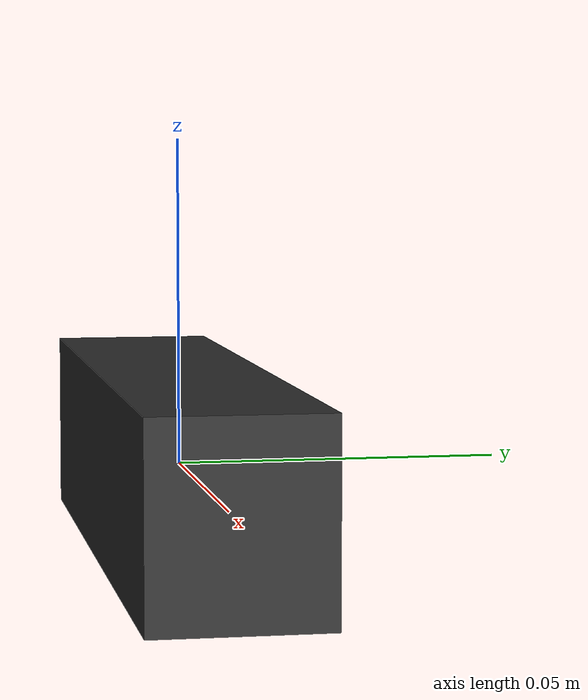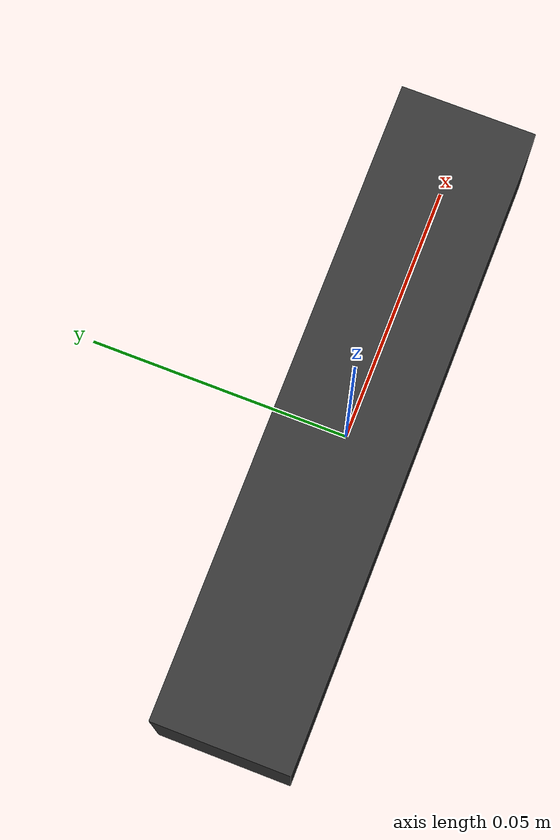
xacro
<?xml version="1.0"?>
<!-- 独立 D455 可视化模型 -->
<robot name="d455_only" xmlns:xacro="http://www.ros.org/wiki/xacro">
  <link name="base_link"/>

  <link name="head_d455_link">
    <inertial>
      <origin xyz="0 0 0" rpy="0 0 0"/>
      <mass value="0.12"/>
      <inertia ixx="0.00005" ixy="0" ixz="0" iyy="0.00005" iyz="0" izz="0.00005"/>
    </inertial>
    <visual>
      <origin xyz="0 0 0" rpy="0 0 0"/>
      <geometry>
        <box size="0.124 0.026 0.029"/>
      </geometry>
      <material name="d455_grey">
        <color rgba="0.2 0.2 0.2 1.0"/>
      </material>
    </visual>
    <collision>
      <origin xyz="0 0 0" rpy="0 0 0"/>
      <geometry>
        <box size="0.124 0.026 0.029"/>
      </geometry>
    </collision>
  </link>

  <joint name="base_to_d455_joint" type="fixed">
    <origin xyz="0 0 0" rpy="0 0 0"/>
    <parent link="base_link"/>
    <child link="head_d455_link"/>
  </joint>

  <link name="head_d455_optical_frame"/>
  <joint name="head_d455_optical_joint" type="fixed">
    <origin xyz="0 0 0" rpy="-1.5707963 0 -1.5707963"/>
    <parent link="head_d455_link"/>
    <child link="head_d455_optical_frame"/>
  </joint>
</robot>
